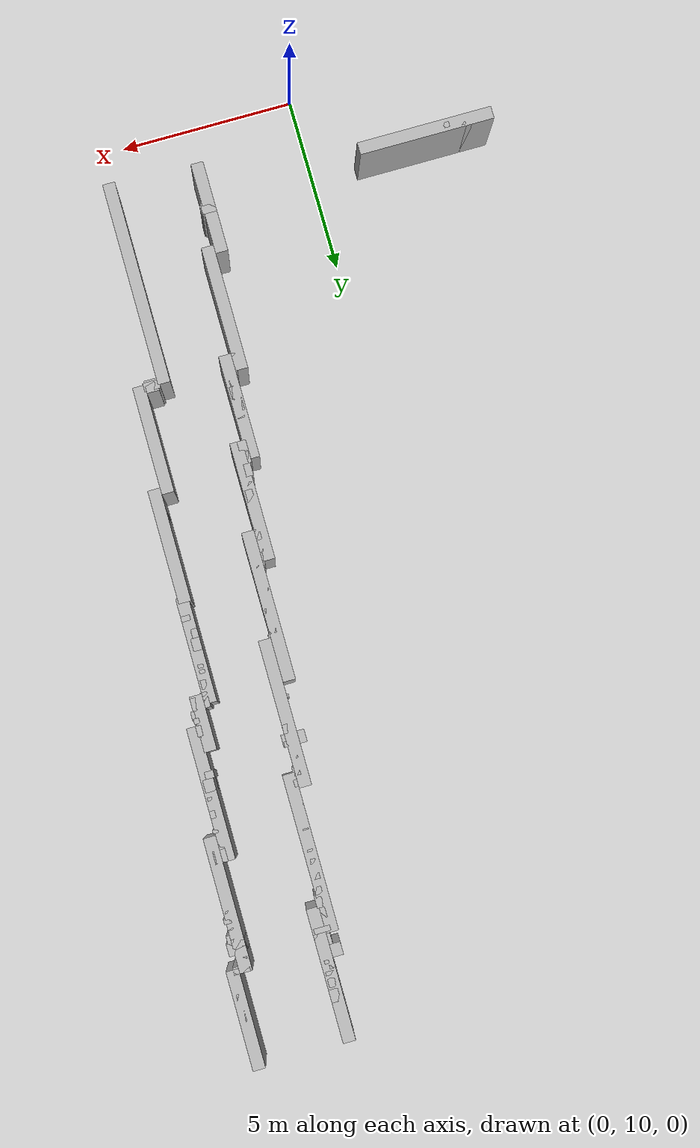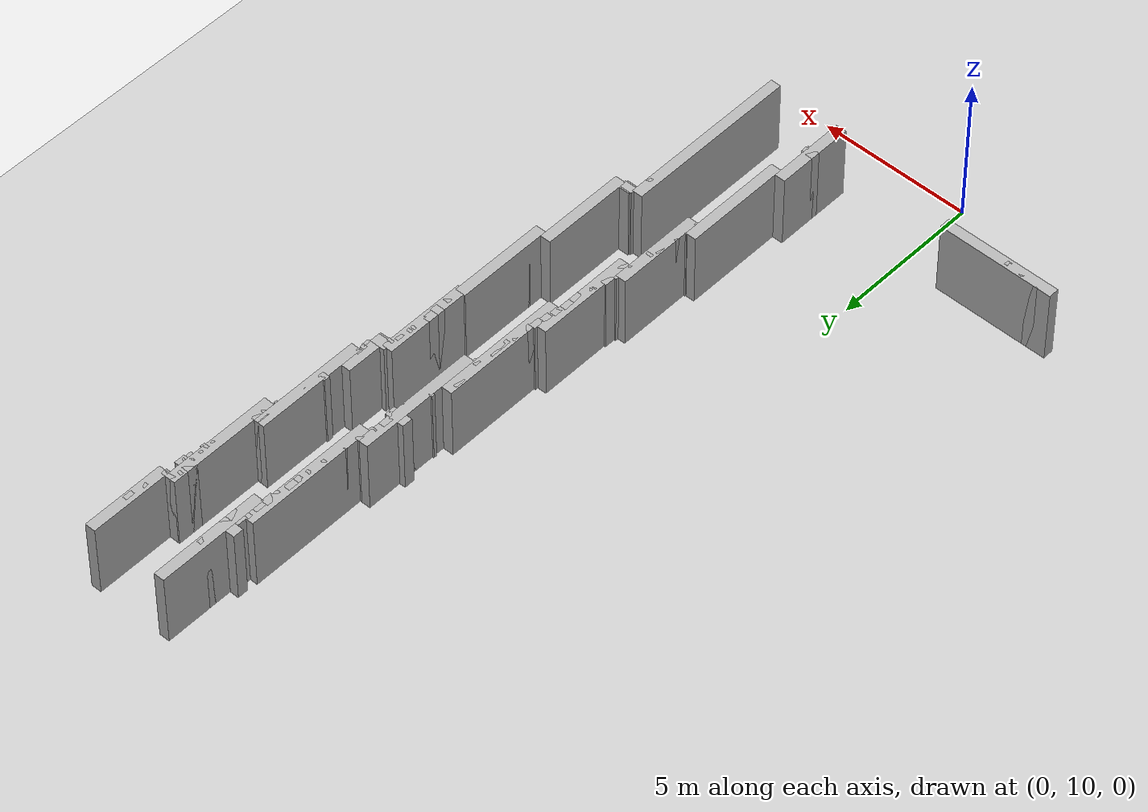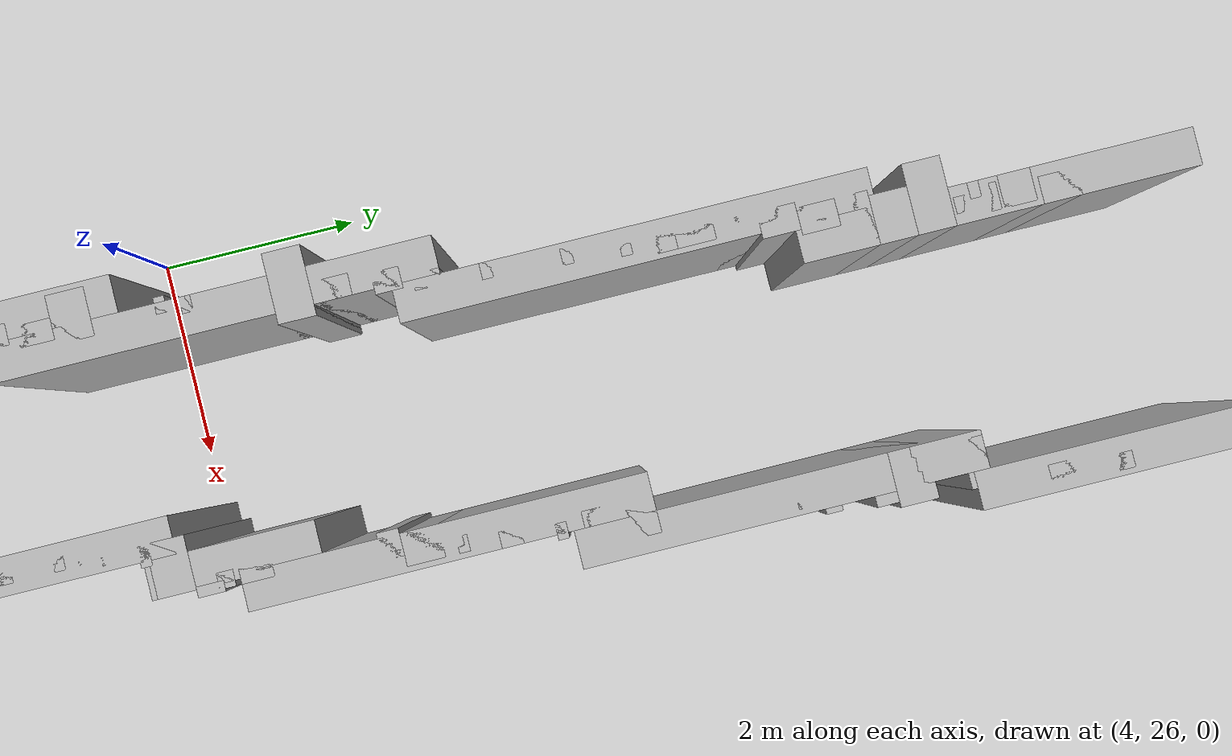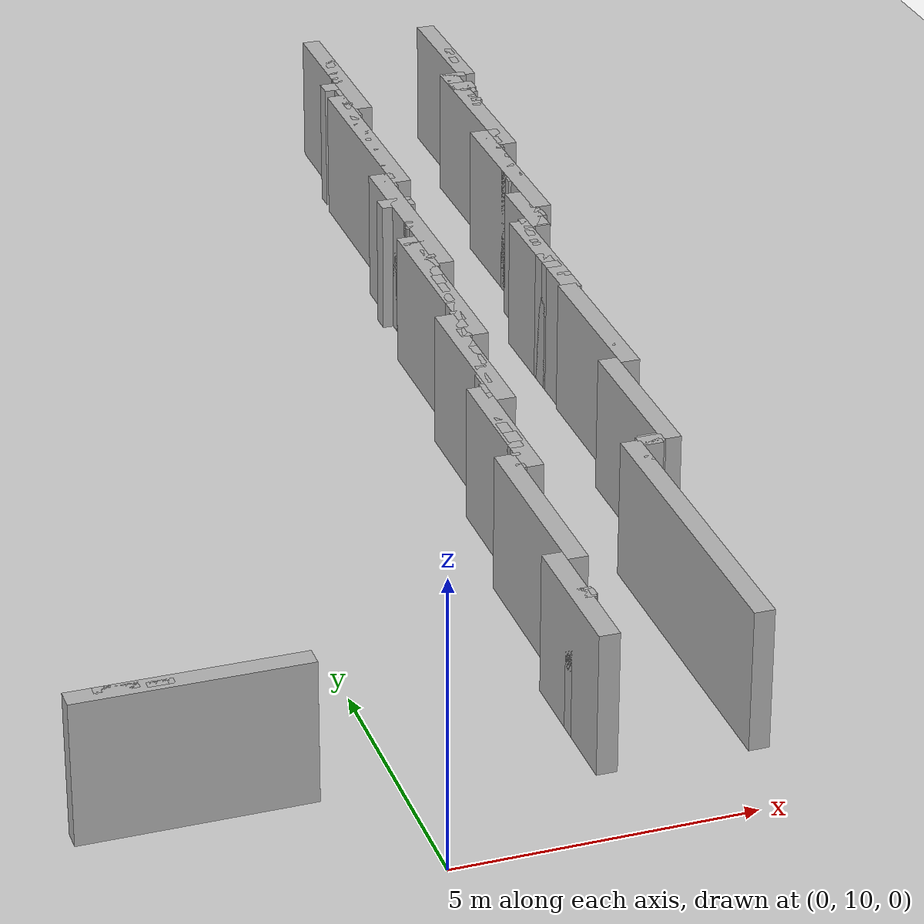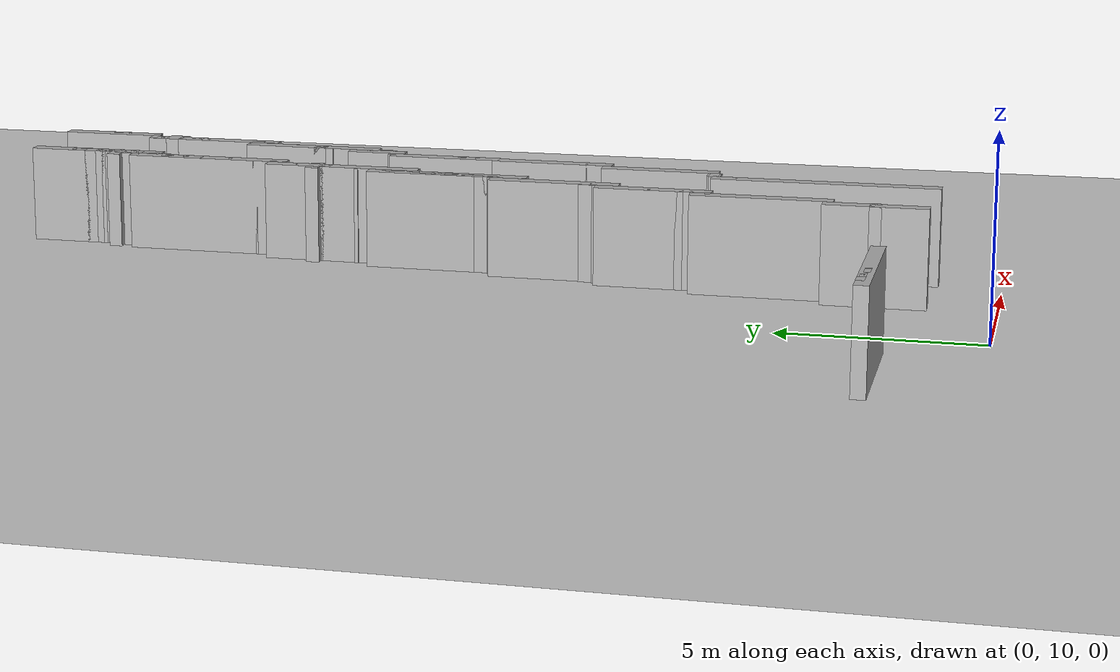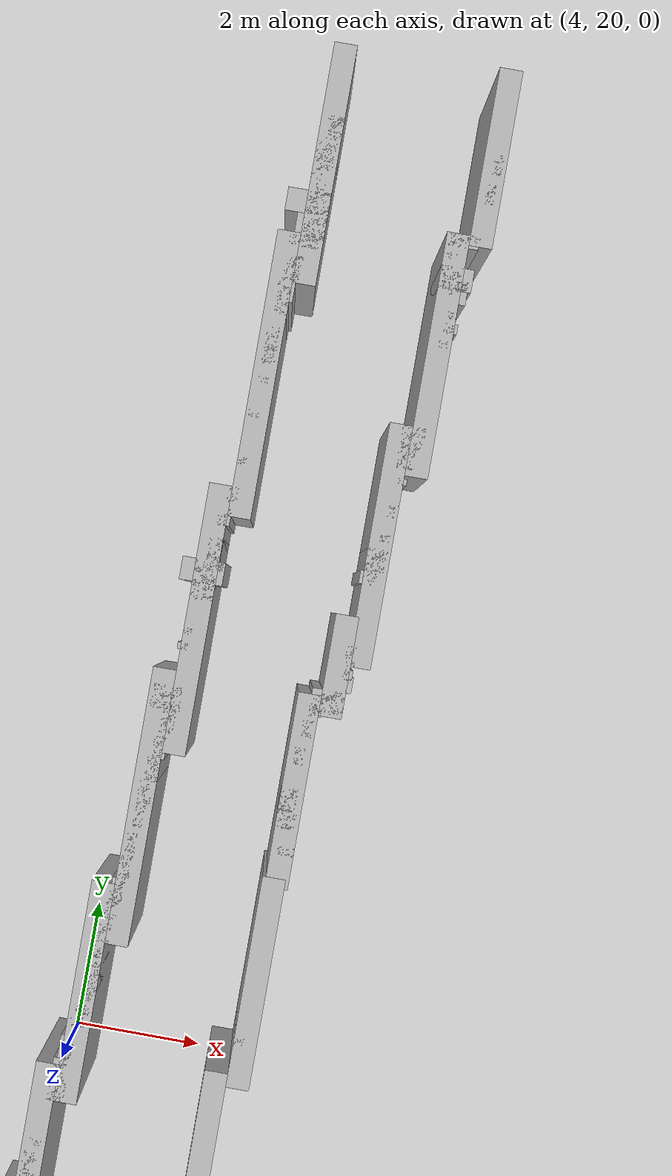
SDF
<sdf version="1.9">
 <world name="real_map_big_fix">
  <model name="ground_plane">
   <static>true</static>
   <link name="link">
    <collision name="collision">
     <geometry><plane><normal>0 0 1</normal><size>100 100</size></plane></geometry>
    </collision>
    <visual name="visual">
     <geometry><plane><normal>0 0 1</normal><size>100 100</size></plane></geometry>
     <material><ambient>0.8 0.8 0.8 1</ambient><diffuse>0.8 0.8 0.8 1</diffuse></material>
    </visual>
   </link>
  </model>
  <model name="wall_h_184">
   <static>true</static>
   <pose>5.6520 34.5120 1.2500 0 0 0</pose>
   <link name="link">
    <collision name="collision"><geometry><box><size>0.2500 0.3500 2.5000</size></box></geometry></collision>
    <visual name="visual">
     <geometry><box><size>0.2500 0.3500 2.5000</size></box></geometry>
     <material><ambient>0.7 0.7 0.7 1</ambient><diffuse>0.7 0.7 0.7 1</diffuse></material>
    </visual>
   </link>
  </model>
  <model name="wall_h_185">
   <static>true</static>
   <pose>8.1520 34.3870 1.2500 0 0 0</pose>
   <link name="link">
    <collision name="collision"><geometry><box><size>0.1500 0.3000 2.5000</size></box></geometry></collision>
    <visual name="visual">
     <geometry><box><size>0.1500 0.3000 2.5000</size></box></geometry>
     <material><ambient>0.7 0.7 0.7 1</ambient><diffuse>0.7 0.7 0.7 1</diffuse></material>
    </visual>
   </link>
  </model>
  <model name="wall_h_186">
   <static>true</static>
   <pose>5.5770 34.1370 1.2500 0 0 0</pose>
   <link name="link">
    <collision name="collision"><geometry><box><size>0.3000 0.3000 2.5000</size></box></geometry></collision>
    <visual name="visual">
     <geometry><box><size>0.3000 0.3000 2.5000</size></box></geometry>
     <material><ambient>0.7 0.7 0.7 1</ambient><diffuse>0.7 0.7 0.7 1</diffuse></material>
    </visual>
   </link>
  </model>
  <model name="wall_h_187">
   <static>true</static>
   <pose>8.1020 33.9370 1.2500 0 0 0</pose>
   <link name="link">
    <collision name="collision"><geometry><box><size>0.1500 0.3000 2.5000</size></box></geometry></collision>
    <visual name="visual">
     <geometry><box><size>0.1500 0.3000 2.5000</size></box></geometry>
     <material><ambient>0.7 0.7 0.7 1</ambient><diffuse>0.7 0.7 0.7 1</diffuse></material>
    </visual>
   </link>
  </model>
  <model name="wall_h_188">
   <static>true</static>
   <pose>5.6020 33.9120 1.2500 0 0 0</pose>
   <link name="link">
    <collision name="collision"><geometry><box><size>0.2500 0.1000 2.5000</size></box></geometry></collision>
    <visual name="visual">
     <geometry><box><size>0.2500 0.1000 2.5000</size></box></geometry>
     <material><ambient>0.7 0.7 0.7 1</ambient><diffuse>0.7 0.7 0.7 1</diffuse></material>
    </visual>
   </link>
  </model>
  <model name="wall_h_189">
   <static>true</static>
   <pose>5.5020 33.7620 1.2500 0 0 0</pose>
   <link name="link">
    <collision name="collision"><geometry><box><size>0.1500 0.1000 2.5000</size></box></geometry></collision>
    <visual name="visual">
     <geometry><box><size>0.1500 0.1000 2.5000</size></box></geometry>
     <material><ambient>0.7 0.7 0.7 1</ambient><diffuse>0.7 0.7 0.7 1</diffuse></material>
    </visual>
   </link>
  </model>
  <model name="wall_h_190">
   <static>true</static>
   <pose>5.6020 33.6120 1.2500 0 0 0</pose>
   <link name="link">
    <collision name="collision"><geometry><box><size>0.1500 0.1000 2.5000</size></box></geometry></collision>
    <visual name="visual">
     <geometry><box><size>0.1500 0.1000 2.5000</size></box></geometry>
     <material><ambient>0.7 0.7 0.7 1</ambient><diffuse>0.7 0.7 0.7 1</diffuse></material>
    </visual>
   </link>
  </model>
  <model name="wall_h_191">
   <static>true</static>
   <pose>5.4520 33.3620 1.2500 0 0 0</pose>
   <link name="link">
    <collision name="collision"><geometry><box><size>0.6500 0.3500 2.5000</size></box></geometry></collision>
    <visual name="visual">
     <geometry><box><size>0.6500 0.3500 2.5000</size></box></geometry>
     <material><ambient>0.7 0.7 0.7 1</ambient><diffuse>0.7 0.7 0.7 1</diffuse></material>
    </visual>
   </link>
  </model>
  <model name="wall_h_192">
   <static>true</static>
   <pose>7.8520 33.1870 1.2500 0 0 0</pose>
   <link name="link">
    <collision name="collision"><geometry><box><size>0.4500 0.2000 2.5000</size></box></geometry></collision>
    <visual name="visual">
     <geometry><box><size>0.4500 0.2000 2.5000</size></box></geometry>
     <material><ambient>0.7 0.7 0.7 1</ambient><diffuse>0.7 0.7 0.7 1</diffuse></material>
    </visual>
   </link>
  </model>
  <model name="wall_h_193">
   <static>true</static>
   <pose>5.5520 33.0120 1.2500 0 0 0</pose>
   <link name="link">
    <collision name="collision"><geometry><box><size>0.4500 0.3500 2.5000</size></box></geometry></collision>
    <visual name="visual">
     <geometry><box><size>0.4500 0.3500 2.5000</size></box></geometry>
     <material><ambient>0.7 0.7 0.7 1</ambient><diffuse>0.7 0.7 0.7 1</diffuse></material>
    </visual>
   </link>
  </model>
  <model name="wall_h_194">
   <static>true</static>
   <pose>7.7020 32.9370 1.2500 0 0 0</pose>
   <link name="link">
    <collision name="collision"><geometry><box><size>0.1500 0.1000 2.5000</size></box></geometry></collision>
    <visual name="visual">
     <geometry><box><size>0.1500 0.1000 2.5000</size></box></geometry>
     <material><ambient>0.7 0.7 0.7 1</ambient><diffuse>0.7 0.7 0.7 1</diffuse></material>
    </visual>
   </link>
  </model>
  <model name="wall_h_195">
   <static>true</static>
   <pose>5.5020 32.7620 1.2500 0 0 0</pose>
   <link name="link">
    <collision name="collision"><geometry><box><size>0.4500 0.1500 2.5000</size></box></geometry></collision>
    <visual name="visual">
     <geometry><box><size>0.4500 0.1500 2.5000</size></box></geometry>
     <material><ambient>0.7 0.7 0.7 1</ambient><diffuse>0.7 0.7 0.7 1</diffuse></material>
    </visual>
   </link>
  </model>
  <model name="wall_h_196">
   <static>true</static>
   <pose>7.8270 32.6120 1.2500 0 0 0</pose>
   <link name="link">
    <collision name="collision"><geometry><box><size>0.5000 0.3500 2.5000</size></box></geometry></collision>
    <visual name="visual">
     <geometry><box><size>0.5000 0.3500 2.5000</size></box></geometry>
     <material><ambient>0.7 0.7 0.7 1</ambient><diffuse>0.7 0.7 0.7 1</diffuse></material>
    </visual>
   </link>
  </model>
  <model name="wall_h_197">
   <static>true</static>
   <pose>5.4020 32.3620 1.2500 0 0 0</pose>
   <link name="link">
    <collision name="collision"><geometry><box><size>0.2500 0.3500 2.5000</size></box></geometry></collision>
    <visual name="visual">
     <geometry><box><size>0.2500 0.3500 2.5000</size></box></geometry>
     <material><ambient>0.7 0.7 0.7 1</ambient><diffuse>0.7 0.7 0.7 1</diffuse></material>
    </visual>
   </link>
  </model>
  <model name="wall_h_198">
   <static>true</static>
   <pose>7.8270 32.4120 1.2500 0 0 0</pose>
   <link name="link">
    <collision name="collision"><geometry><box><size>0.2000 0.1000 2.5000</size></box></geometry></collision>
    <visual name="visual">
     <geometry><box><size>0.2000 0.1000 2.5000</size></box></geometry>
     <material><ambient>0.7 0.7 0.7 1</ambient><diffuse>0.7 0.7 0.7 1</diffuse></material>
    </visual>
   </link>
  </model>
  <model name="wall_h_199">
   <static>true</static>
   <pose>5.3520 32.0120 1.2500 0 0 0</pose>
   <link name="link">
    <collision name="collision"><geometry><box><size>0.2500 0.3500 2.5000</size></box></geometry></collision>
    <visual name="visual">
     <geometry><box><size>0.2500 0.3500 2.5000</size></box></geometry>
     <material><ambient>0.7 0.7 0.7 1</ambient><diffuse>0.7 0.7 0.7 1</diffuse></material>
    </visual>
   </link>
  </model>
  <model name="wall_h_200">
   <static>true</static>
   <pose>7.8520 32.0620 1.2500 0 0 0</pose>
   <link name="link">
    <collision name="collision"><geometry><box><size>0.1500 0.1000 2.5000</size></box></geometry></collision>
    <visual name="visual">
     <geometry><box><size>0.1500 0.1000 2.5000</size></box></geometry>
     <material><ambient>0.7 0.7 0.7 1</ambient><diffuse>0.7 0.7 0.7 1</diffuse></material>
    </visual>
   </link>
  </model>
  <model name="wall_h_201">
   <static>true</static>
   <pose>7.8770 31.8620 1.2500 0 0 0</pose>
   <link name="link">
    <collision name="collision"><geometry><box><size>0.2000 0.1500 2.5000</size></box></geometry></collision>
    <visual name="visual">
     <geometry><box><size>0.2000 0.1500 2.5000</size></box></geometry>
     <material><ambient>0.7 0.7 0.7 1</ambient><diffuse>0.7 0.7 0.7 1</diffuse></material>
    </visual>
   </link>
  </model>
  <model name="wall_h_202">
   <static>true</static>
   <pose>5.3270 31.7370 1.2500 0 0 0</pose>
   <link name="link">
    <collision name="collision"><geometry><box><size>0.2000 0.2000 2.5000</size></box></geometry></collision>
    <visual name="visual">
     <geometry><box><size>0.2000 0.2000 2.5000</size></box></geometry>
     <material><ambient>0.7 0.7 0.7 1</ambient><diffuse>0.7 0.7 0.7 1</diffuse></material>
    </visual>
   </link>
  </model>
  <model name="wall_h_203">
   <static>true</static>
   <pose>7.8020 31.6120 1.2500 0 0 0</pose>
   <link name="link">
    <collision name="collision"><geometry><box><size>0.1500 0.1000 2.5000</size></box></geometry></collision>
    <visual name="visual">
     <geometry><box><size>0.1500 0.1000 2.5000</size></box></geometry>
     <material><ambient>0.7 0.7 0.7 1</ambient><diffuse>0.7 0.7 0.7 1</diffuse></material>
    </visual>
   </link>
  </model>
  <model name="wall_h_204">
   <static>true</static>
   <pose>5.2770 31.2620 1.2500 0 0 0</pose>
   <link name="link">
    <collision name="collision"><geometry><box><size>0.2000 0.3500 2.5000</size></box></geometry></collision>
    <visual name="visual">
     <geometry><box><size>0.2000 0.3500 2.5000</size></box></geometry>
     <material><ambient>0.7 0.7 0.7 1</ambient><diffuse>0.7 0.7 0.7 1</diffuse></material>
    </visual>
   </link>
  </model>
  <model name="wall_h_205">
   <static>true</static>
   <pose>5.2770 30.9870 1.2500 0 0 0</pose>
   <link name="link">
    <collision name="collision"><geometry><box><size>0.2000 0.2000 2.5000</size></box></geometry></collision>
    <visual name="visual">
     <geometry><box><size>0.2000 0.2000 2.5000</size></box></geometry>
     <material><ambient>0.7 0.7 0.7 1</ambient><diffuse>0.7 0.7 0.7 1</diffuse></material>
    </visual>
   </link>
  </model>
  <model name="wall_h_206">
   <static>true</static>
   <pose>5.2520 30.6370 1.2500 0 0 0</pose>
   <link name="link">
    <collision name="collision"><geometry><box><size>0.1500 0.1000 2.5000</size></box></geometry></collision>
    <visual name="visual">
     <geometry><box><size>0.1500 0.1000 2.5000</size></box></geometry>
     <material><ambient>0.7 0.7 0.7 1</ambient><diffuse>0.7 0.7 0.7 1</diffuse></material>
    </visual>
   </link>
  </model>
  <model name="wall_h_207">
   <static>true</static>
   <pose>7.6020 30.1620 1.2500 0 0 0</pose>
   <link name="link">
    <collision name="collision"><geometry><box><size>0.3500 0.3500 2.5000</size></box></geometry></collision>
    <visual name="visual">
     <geometry><box><size>0.3500 0.3500 2.5000</size></box></geometry>
     <material><ambient>0.7 0.7 0.7 1</ambient><diffuse>0.7 0.7 0.7 1</diffuse></material>
    </visual>
   </link>
  </model>
  <model name="wall_h_208">
   <static>true</static>
   <pose>5.2020 30.1120 1.2500 0 0 0</pose>
   <link name="link">
    <collision name="collision"><geometry><box><size>0.1500 0.1000 2.5000</size></box></geometry></collision>
    <visual name="visual">
     <geometry><box><size>0.1500 0.1000 2.5000</size></box></geometry>
     <material><ambient>0.7 0.7 0.7 1</ambient><diffuse>0.7 0.7 0.7 1</diffuse></material>
    </visual>
   </link>
  </model>
  <model name="wall_h_209">
   <static>true</static>
   <pose>7.5520 29.8370 1.2500 0 0 0</pose>
   <link name="link">
    <collision name="collision"><geometry><box><size>0.2500 0.3000 2.5000</size></box></geometry></collision>
    <visual name="visual">
     <geometry><box><size>0.2500 0.3000 2.5000</size></box></geometry>
     <material><ambient>0.7 0.7 0.7 1</ambient><diffuse>0.7 0.7 0.7 1</diffuse></material>
    </visual>
   </link>
  </model>
  <model name="wall_h_210">
   <static>true</static>
   <pose>7.5520 29.4870 1.2500 0 0 0</pose>
   <link name="link">
    <collision name="collision"><geometry><box><size>0.1500 0.1000 2.5000</size></box></geometry></collision>
    <visual name="visual">
     <geometry><box><size>0.1500 0.1000 2.5000</size></box></geometry>
     <material><ambient>0.7 0.7 0.7 1</ambient><diffuse>0.7 0.7 0.7 1</diffuse></material>
    </visual>
   </link>
  </model>
  <model name="wall_h_211">
   <static>true</static>
   <pose>5.1520 29.3870 1.2500 0 0 0</pose>
   <link name="link">
    <collision name="collision"><geometry><box><size>0.1500 0.1000 2.5000</size></box></geometry></collision>
    <visual name="visual">
     <geometry><box><size>0.1500 0.1000 2.5000</size></box></geometry>
     <material><ambient>0.7 0.7 0.7 1</ambient><diffuse>0.7 0.7 0.7 1</diffuse></material>
    </visual>
   </link>
  </model>
  <model name="wall_h_212">
   <static>true</static>
   <pose>7.5020 29.0370 1.2500 0 0 0</pose>
   <link name="link">
    <collision name="collision"><geometry><box><size>0.1500 0.2000 2.5000</size></box></geometry></collision>
    <visual name="visual">
     <geometry><box><size>0.1500 0.2000 2.5000</size></box></geometry>
     <material><ambient>0.7 0.7 0.7 1</ambient><diffuse>0.7 0.7 0.7 1</diffuse></material>
    </visual>
   </link>
  </model>
  <model name="wall_h_213">
   <static>true</static>
   <pose>5.1020 28.8620 1.2500 0 0 0</pose>
   <link name="link">
    <collision name="collision"><geometry><box><size>0.1500 0.2500 2.5000</size></box></geometry></collision>
    <visual name="visual">
     <geometry><box><size>0.1500 0.2500 2.5000</size></box></geometry>
     <material><ambient>0.7 0.7 0.7 1</ambient><diffuse>0.7 0.7 0.7 1</diffuse></material>
    </visual>
   </link>
  </model>
  <model name="wall_h_214">
   <static>true</static>
   <pose>5.0270 28.5120 1.2500 0 0 0</pose>
   <link name="link">
    <collision name="collision"><geometry><box><size>0.2000 0.2500 2.5000</size></box></geometry></collision>
    <visual name="visual">
     <geometry><box><size>0.2000 0.2500 2.5000</size></box></geometry>
     <material><ambient>0.7 0.7 0.7 1</ambient><diffuse>0.7 0.7 0.7 1</diffuse></material>
    </visual>
   </link>
  </model>
  <model name="wall_h_215">
   <static>true</static>
   <pose>7.4520 28.6120 1.2500 0 0 0</pose>
   <link name="link">
    <collision name="collision"><geometry><box><size>0.1500 0.1000 2.5000</size></box></geometry></collision>
    <visual name="visual">
     <geometry><box><size>0.1500 0.1000 2.5000</size></box></geometry>
     <material><ambient>0.7 0.7 0.7 1</ambient><diffuse>0.7 0.7 0.7 1</diffuse></material>
    </visual>
   </link>
  </model>
  <model name="wall_h_216">
   <static>true</static>
   <pose>7.3770 28.2620 1.2500 0 0 0</pose>
   <link name="link">
    <collision name="collision"><geometry><box><size>0.3000 0.3500 2.5000</size></box></geometry></collision>
    <visual name="visual">
     <geometry><box><size>0.3000 0.3500 2.5000</size></box></geometry>
     <material><ambient>0.7 0.7 0.7 1</ambient><diffuse>0.7 0.7 0.7 1</diffuse></material>
    </visual>
   </link>
  </model>
  <model name="wall_h_217">
   <static>true</static>
   <pose>4.9770 28.0120 1.2500 0 0 0</pose>
   <link name="link">
    <collision name="collision"><geometry><box><size>0.2000 0.3500 2.5000</size></box></geometry></collision>
    <visual name="visual">
     <geometry><box><size>0.2000 0.3500 2.5000</size></box></geometry>
     <material><ambient>0.7 0.7 0.7 1</ambient><diffuse>0.7 0.7 0.7 1</diffuse></material>
    </visual>
   </link>
  </model>
  <model name="wall_h_218">
   <static>true</static>
   <pose>7.3020 27.9870 1.2500 0 0 0</pose>
   <link name="link">
    <collision name="collision"><geometry><box><size>0.2500 0.2000 2.5000</size></box></geometry></collision>
    <visual name="visual">
     <geometry><box><size>0.2500 0.2000 2.5000</size></box></geometry>
     <material><ambient>0.7 0.7 0.7 1</ambient><diffuse>0.7 0.7 0.7 1</diffuse></material>
    </visual>
   </link>
  </model>
  <model name="wall_h_219">
   <static>true</static>
   <pose>4.8520 27.6620 1.2500 0 0 0</pose>
   <link name="link">
    <collision name="collision"><geometry><box><size>0.6500 0.3500 2.5000</size></box></geometry></collision>
    <visual name="visual">
     <geometry><box><size>0.6500 0.3500 2.5000</size></box></geometry>
     <material><ambient>0.7 0.7 0.7 1</ambient><diffuse>0.7 0.7 0.7 1</diffuse></material>
    </visual>
   </link>
  </model>
  <model name="wall_h_220">
   <static>true</static>
   <pose>4.9020 27.3620 1.2500 0 0 0</pose>
   <link name="link">
    <collision name="collision"><geometry><box><size>0.3500 0.2500 2.5000</size></box></geometry></collision>
    <visual name="visual">
     <geometry><box><size>0.3500 0.2500 2.5000</size></box></geometry>
     <material><ambient>0.7 0.7 0.7 1</ambient><diffuse>0.7 0.7 0.7 1</diffuse></material>
    </visual>
   </link>
  </model>
  <model name="wall_h_221">
   <static>true</static>
   <pose>7.2520 26.7870 1.2500 0 0 0</pose>
   <link name="link">
    <collision name="collision"><geometry><box><size>0.1500 0.3000 2.5000</size></box></geometry></collision>
    <visual name="visual">
     <geometry><box><size>0.1500 0.3000 2.5000</size></box></geometry>
     <material><ambient>0.7 0.7 0.7 1</ambient><diffuse>0.7 0.7 0.7 1</diffuse></material>
    </visual>
   </link>
  </model>
  <model name="wall_h_222">
   <static>true</static>
   <pose>4.8020 26.7370 1.2500 0 0 0</pose>
   <link name="link">
    <collision name="collision"><geometry><box><size>0.1500 0.1000 2.5000</size></box></geometry></collision>
    <visual name="visual">
     <geometry><box><size>0.1500 0.1000 2.5000</size></box></geometry>
     <material><ambient>0.7 0.7 0.7 1</ambient><diffuse>0.7 0.7 0.7 1</diffuse></material>
    </visual>
   </link>
  </model>
  <model name="wall_h_223">
   <static>true</static>
   <pose>7.2520 26.5120 1.2500 0 0 0</pose>
   <link name="link">
    <collision name="collision"><geometry><box><size>0.1500 0.1500 2.5000</size></box></geometry></collision>
    <visual name="visual">
     <geometry><box><size>0.1500 0.1500 2.5000</size></box></geometry>
     <material><ambient>0.7 0.7 0.7 1</ambient><diffuse>0.7 0.7 0.7 1</diffuse></material>
    </visual>
   </link>
  </model>
  <model name="wall_h_224">
   <static>true</static>
   <pose>4.7520 26.5120 1.2500 0 0 0</pose>
   <link name="link">
    <collision name="collision"><geometry><box><size>0.1500 0.1000 2.5000</size></box></geometry></collision>
    <visual name="visual">
     <geometry><box><size>0.1500 0.1000 2.5000</size></box></geometry>
     <material><ambient>0.7 0.7 0.7 1</ambient><diffuse>0.7 0.7 0.7 1</diffuse></material>
    </visual>
   </link>
  </model>
  <model name="wall_h_225">
   <static>true</static>
   <pose>7.0270 26.0620 1.2500 0 0 0</pose>
   <link name="link">
    <collision name="collision"><geometry><box><size>0.5000 0.3500 2.5000</size></box></geometry></collision>
    <visual name="visual">
     <geometry><box><size>0.5000 0.3500 2.5000</size></box></geometry>
     <material><ambient>0.7 0.7 0.7 1</ambient><diffuse>0.7 0.7 0.7 1</diffuse></material>
    </visual>
   </link>
  </model>
  <model name="wall_h_226">
   <static>true</static>
   <pose>4.6520 25.7120 1.2500 0 0 0</pose>
   <link name="link">
    <collision name="collision"><geometry><box><size>0.4500 0.3500 2.5000</size></box></geometry></collision>
    <visual name="visual">
     <geometry><box><size>0.4500 0.3500 2.5000</size></box></geometry>
     <material><ambient>0.7 0.7 0.7 1</ambient><diffuse>0.7 0.7 0.7 1</diffuse></material>
    </visual>
   </link>
  </model>
  <model name="wall_h_227">
   <static>true</static>
   <pose>6.8770 25.8620 1.2500 0 0 0</pose>
   <link name="link">
    <collision name="collision"><geometry><box><size>0.2000 0.1000 2.5000</size></box></geometry></collision>
    <visual name="visual">
     <geometry><box><size>0.2000 0.1000 2.5000</size></box></geometry>
     <material><ambient>0.7 0.7 0.7 1</ambient><diffuse>0.7 0.7 0.7 1</diffuse></material>
    </visual>
   </link>
  </model>
  <model name="wall_h_228">
   <static>true</static>
   <pose>6.8020 25.6120 1.2500 0 0 0</pose>
   <link name="link">
    <collision name="collision"><geometry><box><size>0.1500 0.2500 2.5000</size></box></geometry></collision>
    <visual name="visual">
     <geometry><box><size>0.1500 0.2500 2.5000</size></box></geometry>
     <material><ambient>0.7 0.7 0.7 1</ambient><diffuse>0.7 0.7 0.7 1</diffuse></material>
    </visual>
   </link>
  </model>
  <model name="wall_h_229">
   <static>true</static>
   <pose>4.7270 25.3620 1.2500 0 0 0</pose>
   <link name="link">
    <collision name="collision"><geometry><box><size>0.2000 0.3500 2.5000</size></box></geometry></collision>
    <visual name="visual">
     <geometry><box><size>0.2000 0.3500 2.5000</size></box></geometry>
     <material><ambient>0.7 0.7 0.7 1</ambient><diffuse>0.7 0.7 0.7 1</diffuse></material>
    </visual>
   </link>
  </model>
  <model name="wall_h_230">
   <static>true</static>
   <pose>6.7520 25.2620 1.2500 0 0 0</pose>
   <link name="link">
    <collision name="collision"><geometry><box><size>0.1500 0.1000 2.5000</size></box></geometry></collision>
    <visual name="visual">
     <geometry><box><size>0.1500 0.1000 2.5000</size></box></geometry>
     <material><ambient>0.7 0.7 0.7 1</ambient><diffuse>0.7 0.7 0.7 1</diffuse></material>
    </visual>
   </link>
  </model>
  <model name="wall_h_231">
   <static>true</static>
   <pose>4.6770 24.9620 1.2500 0 0 0</pose>
   <link name="link">
    <collision name="collision"><geometry><box><size>0.2000 0.3500 2.5000</size></box></geometry></collision>
    <visual name="visual">
     <geometry><box><size>0.2000 0.3500 2.5000</size></box></geometry>
     <material><ambient>0.7 0.7 0.7 1</ambient><diffuse>0.7 0.7 0.7 1</diffuse></material>
    </visual>
   </link>
  </model>
  <model name="wall_h_232">
   <static>true</static>
   <pose>6.7520 25.1120 1.2500 0 0 0</pose>
   <link name="link">
    <collision name="collision"><geometry><box><size>0.1500 0.1000 2.5000</size></box></geometry></collision>
    <visual name="visual">
     <geometry><box><size>0.1500 0.1000 2.5000</size></box></geometry>
     <material><ambient>0.7 0.7 0.7 1</ambient><diffuse>0.7 0.7 0.7 1</diffuse></material>
    </visual>
   </link>
  </model>
  <model name="wall_h_233">
   <static>true</static>
   <pose>4.6270 24.6120 1.2500 0 0 0</pose>
   <link name="link">
    <collision name="collision"><geometry><box><size>0.2000 0.3500 2.5000</size></box></geometry></collision>
    <visual name="visual">
     <geometry><box><size>0.2000 0.3500 2.5000</size></box></geometry>
     <material><ambient>0.7 0.7 0.7 1</ambient><diffuse>0.7 0.7 0.7 1</diffuse></material>
    </visual>
   </link>
  </model>
  <model name="wall_h_234">
   <static>true</static>
   <pose>6.7020 24.5120 1.2500 0 0 0</pose>
   <link name="link">
    <collision name="collision"><geometry><box><size>0.2500 0.3500 2.5000</size></box></geometry></collision>
    <visual name="visual">
     <geometry><box><size>0.2500 0.3500 2.5000</size></box></geometry>
     <material><ambient>0.7 0.7 0.7 1</ambient><diffuse>0.7 0.7 0.7 1</diffuse></material>
    </visual>
   </link>
  </model>
  <model name="wall_h_235">
   <static>true</static>
   <pose>4.5770 24.2620 1.2500 0 0 0</pose>
   <link name="link">
    <collision name="collision"><geometry><box><size>0.2000 0.3500 2.5000</size></box></geometry></collision>
    <visual name="visual">
     <geometry><box><size>0.2000 0.3500 2.5000</size></box></geometry>
     <material><ambient>0.7 0.7 0.7 1</ambient><diffuse>0.7 0.7 0.7 1</diffuse></material>
    </visual>
   </link>
  </model>
  <model name="wall_h_236">
   <static>true</static>
   <pose>6.7270 24.2120 1.2500 0 0 0</pose>
   <link name="link">
    <collision name="collision"><geometry><box><size>0.3000 0.2500 2.5000</size></box></geometry></collision>
    <visual name="visual">
     <geometry><box><size>0.3000 0.2500 2.5000</size></box></geometry>
     <material><ambient>0.7 0.7 0.7 1</ambient><diffuse>0.7 0.7 0.7 1</diffuse></material>
    </visual>
   </link>
  </model>
  <model name="wall_h_237">
   <static>true</static>
   <pose>4.5520 23.9120 1.2500 0 0 0</pose>
   <link name="link">
    <collision name="collision"><geometry><box><size>0.1500 0.3500 2.5000</size></box></geometry></collision>
    <visual name="visual">
     <geometry><box><size>0.1500 0.3500 2.5000</size></box></geometry>
     <material><ambient>0.7 0.7 0.7 1</ambient><diffuse>0.7 0.7 0.7 1</diffuse></material>
    </visual>
   </link>
  </model>
  <model name="wall_h_238">
   <static>true</static>
   <pose>6.8020 23.7620 1.2500 0 0 0</pose>
   <link name="link">
    <collision name="collision"><geometry><box><size>0.2500 0.1500 2.5000</size></box></geometry></collision>
    <visual name="visual">
     <geometry><box><size>0.2500 0.1500 2.5000</size></box></geometry>
     <material><ambient>0.7 0.7 0.7 1</ambient><diffuse>0.7 0.7 0.7 1</diffuse></material>
    </visual>
   </link>
  </model>
  <model name="wall_h_239">
   <static>true</static>
   <pose>4.5020 23.4870 1.2500 0 0 0</pose>
   <link name="link">
    <collision name="collision"><geometry><box><size>0.1500 0.3000 2.5000</size></box></geometry></collision>
    <visual name="visual">
     <geometry><box><size>0.1500 0.3000 2.5000</size></box></geometry>
     <material><ambient>0.7 0.7 0.7 1</ambient><diffuse>0.7 0.7 0.7 1</diffuse></material>
    </visual>
   </link>
  </model>
  <model name="wall_h_240">
   <static>true</static>
   <pose>4.4770 23.1120 1.2500 0 0 0</pose>
   <link name="link">
    <collision name="collision"><geometry><box><size>0.2000 0.3500 2.5000</size></box></geometry></collision>
    <visual name="visual">
     <geometry><box><size>0.2000 0.3500 2.5000</size></box></geometry>
     <material><ambient>0.7 0.7 0.7 1</ambient><diffuse>0.7 0.7 0.7 1</diffuse></material>
    </visual>
   </link>
  </model>
  <model name="wall_h_241">
   <static>true</static>
   <pose>4.4270 22.7620 1.2500 0 0 0</pose>
   <link name="link">
    <collision name="collision"><geometry><box><size>0.2000 0.3500 2.5000</size></box></geometry></collision>
    <visual name="visual">
     <geometry><box><size>0.2000 0.3500 2.5000</size></box></geometry>
     <material><ambient>0.7 0.7 0.7 1</ambient><diffuse>0.7 0.7 0.7 1</diffuse></material>
    </visual>
   </link>
  </model>
  <model name="wall_h_242">
   <static>true</static>
   <pose>4.3770 22.4370 1.2500 0 0 0</pose>
   <link name="link">
    <collision name="collision"><geometry><box><size>0.2000 0.3000 2.5000</size></box></geometry></collision>
    <visual name="visual">
     <geometry><box><size>0.2000 0.3000 2.5000</size></box></geometry>
     <material><ambient>0.7 0.7 0.7 1</ambient><diffuse>0.7 0.7 0.7 1</diffuse></material>
    </visual>
   </link>
  </model>
  <model name="wall_h_243">
   <static>true</static>
   <pose>4.3270 22.0870 1.2500 0 0 0</pose>
   <link name="link">
    <collision name="collision"><geometry><box><size>0.2000 0.3000 2.5000</size></box></geometry></collision>
    <visual name="visual">
     <geometry><box><size>0.2000 0.3000 2.5000</size></box></geometry>
     <material><ambient>0.7 0.7 0.7 1</ambient><diffuse>0.7 0.7 0.7 1</diffuse></material>
    </visual>
   </link>
  </model>
  <model name="wall_h_244">
   <static>true</static>
   <pose>4.2770 21.7120 1.2500 0 0 0</pose>
   <link name="link">
    <collision name="collision"><geometry><box><size>0.2000 0.3500 2.5000</size></box></geometry></collision>
    <visual name="visual">
     <geometry><box><size>0.2000 0.3500 2.5000</size></box></geometry>
     <material><ambient>0.7 0.7 0.7 1</ambient><diffuse>0.7 0.7 0.7 1</diffuse></material>
    </visual>
   </link>
  </model>
  <model name="wall_h_245">
   <static>true</static>
   <pose>4.2770 21.3620 1.2500 0 0 0</pose>
   <link name="link">
    <collision name="collision"><geometry><box><size>0.2000 0.3500 2.5000</size></box></geometry></collision>
    <visual name="visual">
     <geometry><box><size>0.2000 0.3500 2.5000</size></box></geometry>
     <material><ambient>0.7 0.7 0.7 1</ambient><diffuse>0.7 0.7 0.7 1</diffuse></material>
    </visual>
   </link>
  </model>
  <model name="wall_h_246">
   <static>true</static>
   <pose>4.2270 21.0120 1.2500 0 0 0</pose>
   <link name="link">
    <collision name="collision"><geometry><box><size>0.2000 0.3500 2.5000</size></box></geometry></collision>
    <visual name="visual">
     <geometry><box><size>0.2000 0.3500 2.5000</size></box></geometry>
     <material><ambient>0.7 0.7 0.7 1</ambient><diffuse>0.7 0.7 0.7 1</diffuse></material>
    </visual>
   </link>
  </model>
  <model name="wall_h_247">
   <static>true</static>
   <pose>6.6020 20.8370 1.2500 0 0 0</pose>
   <link name="link">
    <collision name="collision"><geometry><box><size>0.1500 0.1000 2.5000</size></box></geometry></collision>
    <visual name="visual">
     <geometry><box><size>0.1500 0.1000 2.5000</size></box></geometry>
     <material><ambient>0.7 0.7 0.7 1</ambient><diffuse>0.7 0.7 0.7 1</diffuse></material>
    </visual>
   </link>
  </model>
  <model name="wall_h_248">
   <static>true</static>
   <pose>4.1770 20.7120 1.2500 0 0 0</pose>
   <link name="link">
    <collision name="collision"><geometry><box><size>0.2000 0.1500 2.5000</size></box></geometry></collision>
    <visual name="visual">
     <geometry><box><size>0.2000 0.1500 2.5000</size></box></geometry>
     <material><ambient>0.7 0.7 0.7 1</ambient><diffuse>0.7 0.7 0.7 1</diffuse></material>
    </visual>
   </link>
  </model>
  <model name="wall_h_249">
   <static>true</static>
   <pose>4.0770 20.3120 1.2500 0 0 0</pose>
   <link name="link">
    <collision name="collision"><geometry><box><size>0.2000 0.3500 2.5000</size></box></geometry></collision>
    <visual name="visual">
     <geometry><box><size>0.2000 0.3500 2.5000</size></box></geometry>
     <material><ambient>0.7 0.7 0.7 1</ambient><diffuse>0.7 0.7 0.7 1</diffuse></material>
    </visual>
   </link>
  </model>
  <model name="wall_h_250">
   <static>true</static>
   <pose>4.0270 19.9620 1.2500 0 0 0</pose>
   <link name="link">
    <collision name="collision"><geometry><box><size>0.2000 0.3500 2.5000</size></box></geometry></collision>
    <visual name="visual">
     <geometry><box><size>0.2000 0.3500 2.5000</size></box></geometry>
     <material><ambient>0.7 0.7 0.7 1</ambient><diffuse>0.7 0.7 0.7 1</diffuse></material>
    </visual>
   </link>
  </model>
  <model name="wall_h_251">
   <static>true</static>
   <pose>4.0520 19.6370 1.2500 0 0 0</pose>
   <link name="link">
    <collision name="collision"><geometry><box><size>0.2500 0.3000 2.5000</size></box></geometry></collision>
    <visual name="visual">
     <geometry><box><size>0.2500 0.3000 2.5000</size></box></geometry>
     <material><ambient>0.7 0.7 0.7 1</ambient><diffuse>0.7 0.7 0.7 1</diffuse></material>
    </visual>
   </link>
  </model>
  <model name="wall_h_252">
   <static>true</static>
   <pose>3.8770 18.8370 1.2500 0 0 0</pose>
   <link name="link">
    <collision name="collision"><geometry><box><size>0.2000 0.1000 2.5000</size></box></geometry></collision>
    <visual name="visual">
     <geometry><box><size>0.2000 0.1000 2.5000</size></box></geometry>
     <material><ambient>0.7 0.7 0.7 1</ambient><diffuse>0.7 0.7 0.7 1</diffuse></material>
    </visual>
   </link>
  </model>
  <model name="wall_h_253">
   <static>true</static>
   <pose>3.8270 18.5120 1.2500 0 0 0</pose>
   <link name="link">
    <collision name="collision"><geometry><box><size>0.2000 0.3500 2.5000</size></box></geometry></collision>
    <visual name="visual">
     <geometry><box><size>0.2000 0.3500 2.5000</size></box></geometry>
     <material><ambient>0.7 0.7 0.7 1</ambient><diffuse>0.7 0.7 0.7 1</diffuse></material>
    </visual>
   </link>
  </model>
  <model name="wall_h_254">
   <static>true</static>
   <pose>3.8520 18.1620 1.2500 0 0 0</pose>
   <link name="link">
    <collision name="collision"><geometry><box><size>0.2500 0.3500 2.5000</size></box></geometry></collision>
    <visual name="visual">
     <geometry><box><size>0.2500 0.3500 2.5000</size></box></geometry>
     <material><ambient>0.7 0.7 0.7 1</ambient><diffuse>0.7 0.7 0.7 1</diffuse></material>
    </visual>
   </link>
  </model>
  <model name="wall_h_255">
   <static>true</static>
   <pose>3.8020 17.8870 1.2500 0 0 0</pose>
   <link name="link">
    <collision name="collision"><geometry><box><size>0.2500 0.2000 2.5000</size></box></geometry></collision>
    <visual name="visual">
     <geometry><box><size>0.2500 0.2000 2.5000</size></box></geometry>
     <material><ambient>0.7 0.7 0.7 1</ambient><diffuse>0.7 0.7 0.7 1</diffuse></material>
    </visual>
   </link>
  </model>
  <model name="wall_h_256">
   <static>true</static>
   <pose>3.7020 17.5620 1.2500 0 0 0</pose>
   <link name="link">
    <collision name="collision"><geometry><box><size>0.1500 0.1000 2.5000</size></box></geometry></collision>
    <visual name="visual">
     <geometry><box><size>0.1500 0.1000 2.5000</size></box></geometry>
     <material><ambient>0.7 0.7 0.7 1</ambient><diffuse>0.7 0.7 0.7 1</diffuse></material>
    </visual>
   </link>
  </model>
  <model name="wall_h_257">
   <static>true</static>
   <pose>6.0020 17.3620 1.2500 0 0 0</pose>
   <link name="link">
    <collision name="collision"><geometry><box><size>0.4500 0.2500 2.5000</size></box></geometry></collision>
    <visual name="visual">
     <geometry><box><size>0.4500 0.2500 2.5000</size></box></geometry>
     <material><ambient>0.7 0.7 0.7 1</ambient><diffuse>0.7 0.7 0.7 1</diffuse></material>
    </visual>
   </link>
  </model>
  <model name="wall_h_258">
   <static>true</static>
   <pose>3.6520 17.1620 1.2500 0 0 0</pose>
   <link name="link">
    <collision name="collision"><geometry><box><size>0.1500 0.1500 2.5000</size></box></geometry></collision>
    <visual name="visual">
     <geometry><box><size>0.1500 0.1500 2.5000</size></box></geometry>
     <material><ambient>0.7 0.7 0.7 1</ambient><diffuse>0.7 0.7 0.7 1</diffuse></material>
    </visual>
   </link>
  </model>
  <model name="wall_h_259">
   <static>true</static>
   <pose>5.7520 16.7620 1.2500 0 0 0</pose>
   <link name="link">
    <collision name="collision"><geometry><box><size>0.1500 0.1500 2.5000</size></box></geometry></collision>
    <visual name="visual">
     <geometry><box><size>0.1500 0.1500 2.5000</size></box></geometry>
     <material><ambient>0.7 0.7 0.7 1</ambient><diffuse>0.7 0.7 0.7 1</diffuse></material>
    </visual>
   </link>
  </model>
  <model name="wall_h_260">
   <static>true</static>
   <pose>3.1770 12.9870 1.2500 0 0 0</pose>
   <link name="link">
    <collision name="collision"><geometry><box><size>0.4000 0.3000 2.5000</size></box></geometry></collision>
    <visual name="visual">
     <geometry><box><size>0.4000 0.3000 2.5000</size></box></geometry>
     <material><ambient>0.7 0.7 0.7 1</ambient><diffuse>0.7 0.7 0.7 1</diffuse></material>
    </visual>
   </link>
  </model>
  <model name="wall_h_261">
   <static>true</static>
   <pose>-3.1980 12.5120 1.2500 0 0 0</pose>
   <link name="link">
    <collision name="collision"><geometry><box><size>3.8500 0.3500 2.5000</size></box></geometry></collision>
    <visual name="visual">
     <geometry><box><size>3.8500 0.3500 2.5000</size></box></geometry>
     <material><ambient>0.7 0.7 0.7 1</ambient><diffuse>0.7 0.7 0.7 1</diffuse></material>
    </visual>
   </link>
  </model>
  <model name="wall_v_011">
   <static>true</static>
   <pose>-4.4980 12.5870 1.2500 0 0 0</pose>
   <link name="link">
    <collision name="collision"><geometry><box><size>0.3500 0.2000 2.5000</size></box></geometry></collision>
    <visual name="visual">
     <geometry><box><size>0.3500 0.2000 2.5000</size></box></geometry>
     <material><ambient>0.7 0.7 0.7 1</ambient><diffuse>0.7 0.7 0.7 1</diffuse></material>
    </visual>
   </link>
  </model>
  <model name="wall_v_013">
   <static>true</static>
   <pose>-4.1480 12.5620 1.2500 0 0 0</pose>
   <link name="link">
    <collision name="collision"><geometry><box><size>0.3500 0.1500 2.5000</size></box></geometry></collision>
    <visual name="visual">
     <geometry><box><size>0.3500 0.1500 2.5000</size></box></geometry>
     <material><ambient>0.7 0.7 0.7 1</ambient><diffuse>0.7 0.7 0.7 1</diffuse></material>
    </visual>
   </link>
  </model>
  <model name="wall_v_016">
   <static>true</static>
   <pose>-3.6980 12.5120 1.2500 0 0 0</pose>
   <link name="link">
    <collision name="collision"><geometry><box><size>0.3500 0.1500 2.5000</size></box></geometry></collision>
    <visual name="visual">
     <geometry><box><size>0.3500 0.1500 2.5000</size></box></geometry>
     <material><ambient>0.7 0.7 0.7 1</ambient><diffuse>0.7 0.7 0.7 1</diffuse></material>
    </visual>
   </link>
  </model>
  <model name="wall_v_019">
   <static>true</static>
   <pose>-3.4980 12.5120 1.2500 0 0 0</pose>
   <link name="link">
    <collision name="collision"><geometry><box><size>0.1000 0.1500 2.5000</size></box></geometry></collision>
    <visual name="visual">
     <geometry><box><size>0.1000 0.1500 2.5000</size></box></geometry>
     <material><ambient>0.7 0.7 0.7 1</ambient><diffuse>0.7 0.7 0.7 1</diffuse></material>
    </visual>
   </link>
  </model>
  <model name="wall_v_107">
   <static>true</static>
   <pose>3.1520 12.9870 1.2500 0 0 0</pose>
   <link name="link">
    <collision name="collision"><geometry><box><size>0.3500 2.6000 2.5000</size></box></geometry></collision>
    <visual name="visual">
     <geometry><box><size>0.3500 2.6000 2.5000</size></box></geometry>
     <material><ambient>0.7 0.7 0.7 1</ambient><diffuse>0.7 0.7 0.7 1</diffuse></material>
    </visual>
   </link>
  </model>
  <model name="wall_v_116">
   <static>true</static>
   <pose>3.5020 15.8120 1.2500 0 0 0</pose>
   <link name="link">
    <collision name="collision"><geometry><box><size>0.3500 3.5500 2.5000</size></box></geometry></collision>
    <visual name="visual">
     <geometry><box><size>0.3500 3.5500 2.5000</size></box></geometry>
     <material><ambient>0.7 0.7 0.7 1</ambient><diffuse>0.7 0.7 0.7 1</diffuse></material>
    </visual>
   </link>
  </model>
  <model name="wall_v_117">
   <static>true</static>
   <pose>3.3520 12.9870 1.2500 0 0 0</pose>
   <link name="link">
    <collision name="collision"><geometry><box><size>0.1000 0.2000 2.5000</size></box></geometry></collision>
    <visual name="visual">
     <geometry><box><size>0.1000 0.2000 2.5000</size></box></geometry>
     <material><ambient>0.7 0.7 0.7 1</ambient><diffuse>0.7 0.7 0.7 1</diffuse></material>
    </visual>
   </link>
  </model>
  <model name="wall_v_122">
   <static>true</static>
   <pose>3.8520 18.5620 1.2500 0 0 0</pose>
   <link name="link">
    <collision name="collision"><geometry><box><size>0.3500 2.9500 2.5000</size></box></geometry></collision>
    <visual name="visual">
     <geometry><box><size>0.3500 2.9500 2.5000</size></box></geometry>
     <material><ambient>0.7 0.7 0.7 1</ambient><diffuse>0.7 0.7 0.7 1</diffuse></material>
    </visual>
   </link>
  </model>
  <model name="wall_v_125">
   <static>true</static>
   <pose>4.2020 21.1620 1.2500 0 0 0</pose>
   <link name="link">
    <collision name="collision"><geometry><box><size>0.3500 3.3500 2.5000</size></box></geometry></collision>
    <visual name="visual">
     <geometry><box><size>0.3500 3.3500 2.5000</size></box></geometry>
     <material><ambient>0.7 0.7 0.7 1</ambient><diffuse>0.7 0.7 0.7 1</diffuse></material>
    </visual>
   </link>
  </model>
  <model name="wall_v_128">
   <static>true</static>
   <pose>4.5520 24.0370 1.2500 0 0 0</pose>
   <link name="link">
    <collision name="collision"><geometry><box><size>0.3500 4.2000 2.5000</size></box></geometry></collision>
    <visual name="visual">
     <geometry><box><size>0.3500 4.2000 2.5000</size></box></geometry>
     <material><ambient>0.7 0.7 0.7 1</ambient><diffuse>0.7 0.7 0.7 1</diffuse></material>
    </visual>
   </link>
  </model>
  <model name="wall_v_132">
   <static>true</static>
   <pose>4.9020 26.9370 1.2500 0 0 0</pose>
   <link name="link">
    <collision name="collision"><geometry><box><size>0.3500 4.1000 2.5000</size></box></geometry></collision>
    <visual name="visual">
     <geometry><box><size>0.3500 4.1000 2.5000</size></box></geometry>
     <material><ambient>0.7 0.7 0.7 1</ambient><diffuse>0.7 0.7 0.7 1</diffuse></material>
    </visual>
   </link>
  </model>
  <model name="wall_v_136">
   <static>true</static>
   <pose>5.2520 30.7120 1.2500 0 0 0</pose>
   <link name="link">
    <collision name="collision"><geometry><box><size>0.3500 4.3500 2.5000</size></box></geometry></collision>
    <visual name="visual">
     <geometry><box><size>0.3500 4.3500 2.5000</size></box></geometry>
     <material><ambient>0.7 0.7 0.7 1</ambient><diffuse>0.7 0.7 0.7 1</diffuse></material>
    </visual>
   </link>
  </model>
  <model name="wall_v_137">
   <static>true</static>
   <pose>5.1020 27.7620 1.2500 0 0 0</pose>
   <link name="link">
    <collision name="collision"><geometry><box><size>0.1000 0.1500 2.5000</size></box></geometry></collision>
    <visual name="visual">
     <geometry><box><size>0.1000 0.1500 2.5000</size></box></geometry>
     <material><ambient>0.7 0.7 0.7 1</ambient><diffuse>0.7 0.7 0.7 1</diffuse></material>
    </visual>
   </link>
  </model>
  <model name="wall_v_145">
   <static>true</static>
   <pose>5.6020 33.9620 1.2500 0 0 0</pose>
   <link name="link">
    <collision name="collision"><geometry><box><size>0.3500 3.6500 2.5000</size></box></geometry></collision>
    <visual name="visual">
     <geometry><box><size>0.3500 3.6500 2.5000</size></box></geometry>
     <material><ambient>0.7 0.7 0.7 1</ambient><diffuse>0.7 0.7 0.7 1</diffuse></material>
    </visual>
   </link>
  </model>
  <model name="wall_v_147">
   <static>true</static>
   <pose>5.6520 14.4870 1.2500 0 0 0</pose>
   <link name="link">
    <collision name="collision"><geometry><box><size>0.3500 5.8000 2.5000</size></box></geometry></collision>
    <visual name="visual">
     <geometry><box><size>0.3500 5.8000 2.5000</size></box></geometry>
     <material><ambient>0.7 0.7 0.7 1</ambient><diffuse>0.7 0.7 0.7 1</diffuse></material>
    </visual>
   </link>
  </model>
  <model name="wall_v_152">
   <static>true</static>
   <pose>6.0020 17.3620 1.2500 0 0 0</pose>
   <link name="link">
    <collision name="collision"><geometry><box><size>0.3500 0.3500 2.5000</size></box></geometry></collision>
    <visual name="visual">
     <geometry><box><size>0.3500 0.3500 2.5000</size></box></geometry>
     <material><ambient>0.7 0.7 0.7 1</ambient><diffuse>0.7 0.7 0.7 1</diffuse></material>
    </visual>
   </link>
  </model>
  <model name="wall_v_158">
   <static>true</static>
   <pose>6.3520 18.8120 1.2500 0 0 0</pose>
   <link name="link">
    <collision name="collision"><geometry><box><size>0.3500 3.0500 2.5000</size></box></geometry></collision>
    <visual name="visual">
     <geometry><box><size>0.3500 3.0500 2.5000</size></box></geometry>
     <material><ambient>0.7 0.7 0.7 1</ambient><diffuse>0.7 0.7 0.7 1</diffuse></material>
    </visual>
   </link>
  </model>
  <model name="wall_v_164">
   <static>true</static>
   <pose>6.7020 21.7370 1.2500 0 0 0</pose>
   <link name="link">
    <collision name="collision"><geometry><box><size>0.3500 3.2000 2.5000</size></box></geometry></collision>
    <visual name="visual">
     <geometry><box><size>0.3500 3.2000 2.5000</size></box></geometry>
     <material><ambient>0.7 0.7 0.7 1</ambient><diffuse>0.7 0.7 0.7 1</diffuse></material>
    </visual>
   </link>
  </model>
  <model name="wall_v_166">
   <static>true</static>
   <pose>6.7520 24.6620 1.2500 0 0 0</pose>
   <link name="link">
    <collision name="collision"><geometry><box><size>0.3500 2.9500 2.5000</size></box></geometry></collision>
    <visual name="visual">
     <geometry><box><size>0.3500 2.9500 2.5000</size></box></geometry>
     <material><ambient>0.7 0.7 0.7 1</ambient><diffuse>0.7 0.7 0.7 1</diffuse></material>
    </visual>
   </link>
  </model>
  <model name="wall_v_173">
   <static>true</static>
   <pose>7.1020 26.6120 1.2500 0 0 0</pose>
   <link name="link">
    <collision name="collision"><geometry><box><size>0.3500 1.5500 2.5000</size></box></geometry></collision>
    <visual name="visual">
     <geometry><box><size>0.3500 1.5500 2.5000</size></box></geometry>
     <material><ambient>0.7 0.7 0.7 1</ambient><diffuse>0.7 0.7 0.7 1</diffuse></material>
    </visual>
   </link>
  </model>
  <model name="wall_v_178">
   <static>true</static>
   <pose>7.4020 28.4870 1.2500 0 0 0</pose>
   <link name="link">
    <collision name="collision"><geometry><box><size>0.3500 3.7000 2.5000</size></box></geometry></collision>
    <visual name="visual">
     <geometry><box><size>0.3500 3.7000 2.5000</size></box></geometry>
     <material><ambient>0.7 0.7 0.7 1</ambient><diffuse>0.7 0.7 0.7 1</diffuse></material>
    </visual>
   </link>
  </model>
  <model name="wall_v_179">
   <static>true</static>
   <pose>7.3020 26.3620 1.2500 0 0 0</pose>
   <link name="link">
    <collision name="collision"><geometry><box><size>0.1000 0.2500 2.5000</size></box></geometry></collision>
    <visual name="visual">
     <geometry><box><size>0.1000 0.2500 2.5000</size></box></geometry>
     <material><ambient>0.7 0.7 0.7 1</ambient><diffuse>0.7 0.7 0.7 1</diffuse></material>
    </visual>
   </link>
  </model>
  <model name="wall_v_184">
   <static>true</static>
   <pose>7.7520 31.4370 1.2500 0 0 0</pose>
   <link name="link">
    <collision name="collision"><geometry><box><size>0.3500 3.7000 2.5000</size></box></geometry></collision>
    <visual name="visual">
     <geometry><box><size>0.3500 3.7000 2.5000</size></box></geometry>
     <material><ambient>0.7 0.7 0.7 1</ambient><diffuse>0.7 0.7 0.7 1</diffuse></material>
    </visual>
   </link>
  </model>
  <model name="wall_v_190">
   <static>true</static>
   <pose>8.1020 34.4870 1.2500 0 0 0</pose>
   <link name="link">
    <collision name="collision"><geometry><box><size>0.3500 2.7000 2.5000</size></box></geometry></collision>
    <visual name="visual">
     <geometry><box><size>0.3500 2.7000 2.5000</size></box></geometry>
     <material><ambient>0.7 0.7 0.7 1</ambient><diffuse>0.7 0.7 0.7 1</diffuse></material>
    </visual>
   </link>
  </model>
  <model name="wall_v_191">
   <static>true</static>
   <pose>7.9770 32.4120 1.2500 0 0 0</pose>
   <link name="link">
    <collision name="collision"><geometry><box><size>0.1000 0.3500 2.5000</size></box></geometry></collision>
    <visual name="visual">
     <geometry><box><size>0.1000 0.3500 2.5000</size></box></geometry>
     <material><ambient>0.7 0.7 0.7 1</ambient><diffuse>0.7 0.7 0.7 1</diffuse></material>
    </visual>
   </link>
  </model>
 </world>
</sdf>
